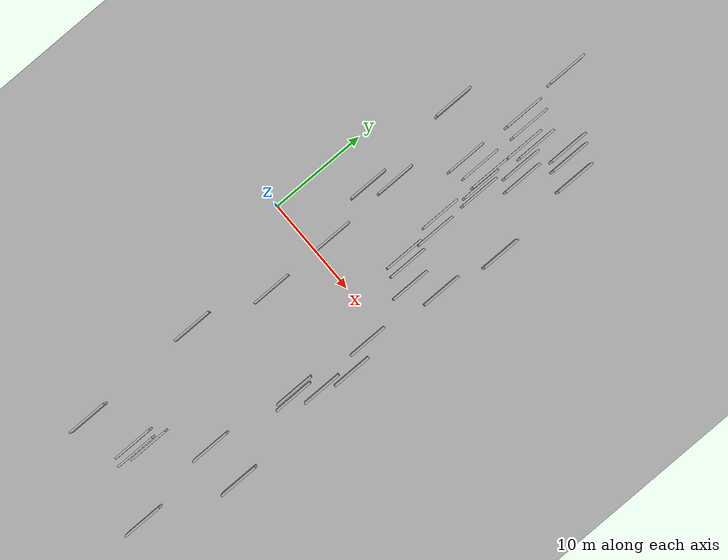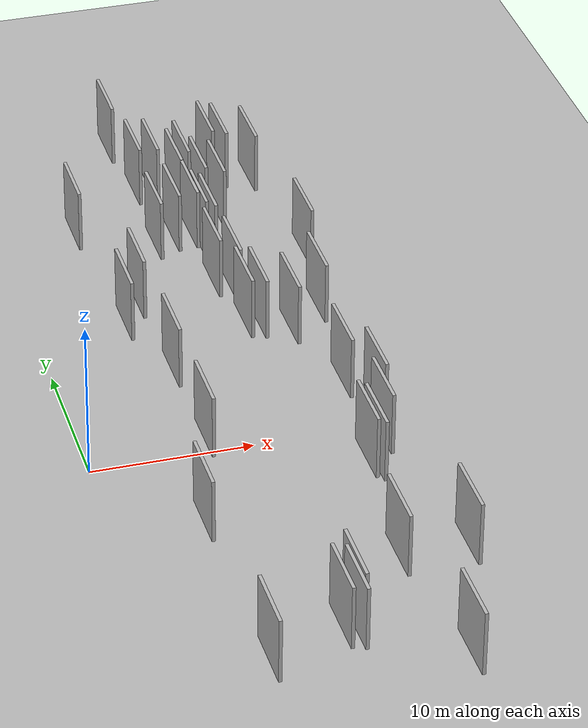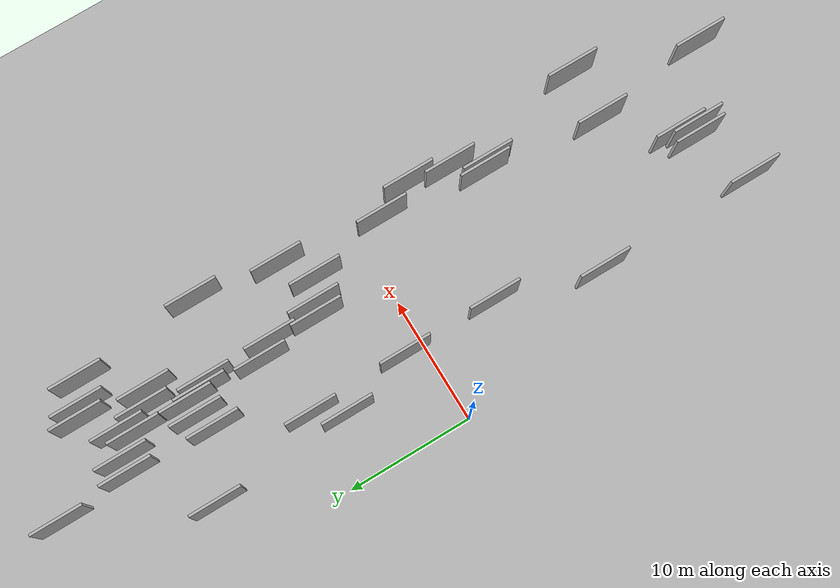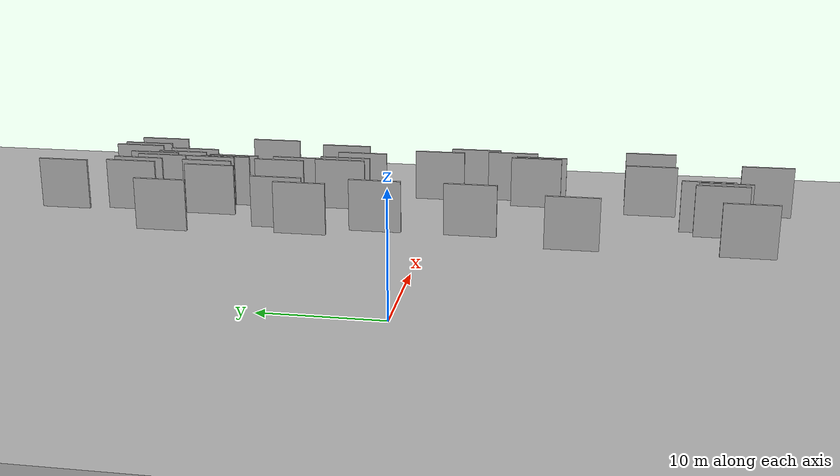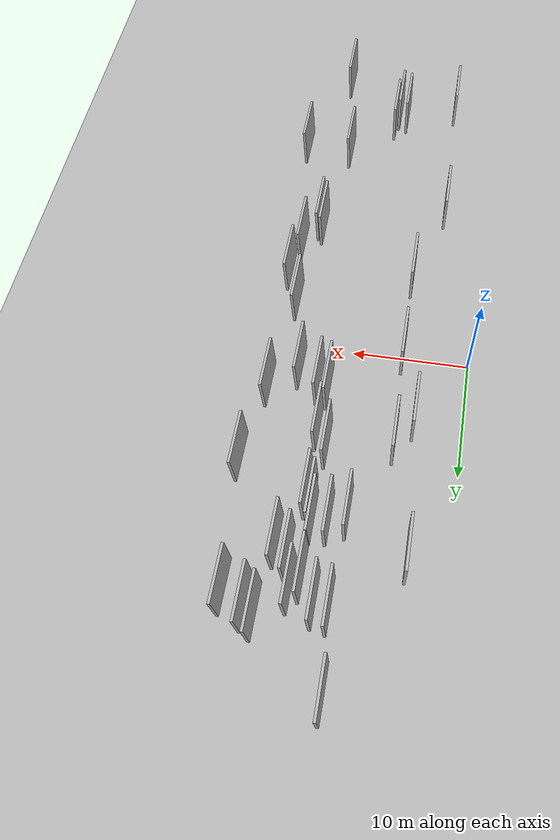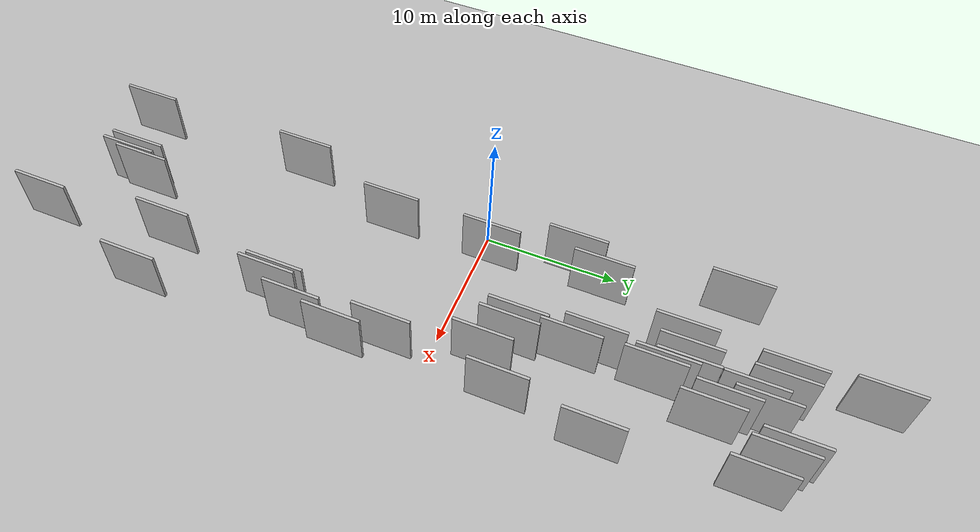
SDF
<?xml version="1.0" encoding="utf-8"?>

<sdf version="1.6">

   <world name="default">

      <gui fullscreen="0">

         <camera name="user_camera">

            <pose>-15 0 4.57585 0 0 0</pose>

            <view_controller>orbit</view_controller>

         </camera>

      </gui>

      <scene>

         <sky>

           <clouds>

             <speed>12</speed>

           </clouds>

         </sky>

         <ambient>0.4 0.4 0.4 1</ambient>

         <background>0.7 0.7 0.7 1</background>

         <shadows>1</shadows>

      </scene>

      <gravity>0 0 -9.8066</gravity>

      <magnetic_field>6e-06 2.3e-05 -4.2e-05</magnetic_field>

      <physics default="0" name="default_physics" type="ode">

         <ode>

            <solver>

               <type>quick</type>

               <iters>10</iters>

               <sor>1.0</sor>

               <use_dynamic_moi_rescaling>0</use_dynamic_moi_rescaling>

            </solver>

            <constraints>

               <cfm>0</cfm>

               <erp>0.2</erp>

               <contact_max_correcting_vel>100</contact_max_correcting_vel>

               <contact_surface_layer>0.001</contact_surface_layer>

            </constraints>

         </ode>

         <max_step_size>0.004</max_step_size>

         <real_time_factor>1</real_time_factor>

         <real_time_update_rate>250</real_time_update_rate>

      </physics>

      <light name="sun" type="directional">

         <cast_shadows>1</cast_shadows>

         <pose>0 0 10 0 0 0</pose>

         <diffuse>0.8 0.8 0.8 1</diffuse>

         <specular>0.2 0.2 0.2 1</specular>

         <attenuation>

            <range>1000</range>

            <constant>0.9</constant>

            <linear>0.01</linear>

            <quadratic>0.001</quadratic>

         </attenuation>

         <direction>-0.5 0.1 -0.9</direction>

      </light>

      <include>

         <name>ground_plane_1</name>

         <uri>model://HANNAS_ground_plane</uri>

         <pose>0 0 0  0 0 0</pose>

      </include>

      <include>

         <name>ground_plane_2</name>

         <uri>model://HANNAS_ground_plane</uri>

         <pose>100 0 0  0 0 0</pose>

      </include>

      <model name="HANNAS_wall_1">

         <static>1</static>

         <pose frame="">16.6338 12.5371 5.0 0.000000 0.000000 1.570796</pose>

         <link name="link">

            <pose frame="">0 0 2.00 0 0 0</pose>

            <collision name="collision">

               <geometry>

                  <box>

                     <size>4.00 0.2 4.00</size>

                  </box>

               </geometry>

               <max_contacts>10</max_contacts>

               <surface>

                  <contact>

                     <ode/>

                  </contact>

                  <bounce/>

                  <friction>

                     <torsional>

                        <ode/>

                     </torsional>

                     <ode/>

                  </friction>

               </surface>

            </collision>

            <visual name="visual">

               <cast_shadows>0</cast_shadows>

               <geometry>

                  <box>

                     <size>4.00 0.2 4.00</size>

                  </box>

               </geometry>

               <material>

                  <script>

                     <uri>model://HANNAS_wall/materials/scripts</uri>

                     <uri>model://HANNAS_wall/materials/textures</uri>

                     <name>vrc/HANNAS_wall</name>

                  </script>

               </material>

            </visual>

            <self_collide>0</self_collide>

            <enable_wind>0</enable_wind>

            <kinematic>0</kinematic>

         </link>

      </model>

      <model name="HANNAS_wall_2">

         <static>1</static>

         <pose frame="">11.7208 19.1572 5.0 0.000000 0.000000 1.570796</pose>

         <link name="link">

            <pose frame="">0 0 2.00 0 0 0</pose>

            <collision name="collision">

               <geometry>

                  <box>

                     <size>4.00 0.2 4.00</size>

                  </box>

               </geometry>

               <max_contacts>10</max_contacts>

               <surface>

                  <contact>

                     <ode/>

                  </contact>

                  <bounce/>

                  <friction>

                     <torsional>

                        <ode/>

                     </torsional>

                     <ode/>

                  </friction>

               </surface>

            </collision>

            <visual name="visual">

               <cast_shadows>0</cast_shadows>

               <geometry>

                  <box>

                     <size>4.00 0.2 4.00</size>

                  </box>

               </geometry>

               <material>

                  <script>

                     <uri>model://HANNAS_wall/materials/scripts</uri>

                     <uri>model://HANNAS_wall/materials/textures</uri>

                     <name>vrc/HANNAS_wall</name>

                  </script>

               </material>

            </visual>

            <self_collide>0</self_collide>

            <enable_wind>0</enable_wind>

            <kinematic>0</kinematic>

         </link>

      </model>

      <model name="HANNAS_wall_3">

         <static>1</static>

         <pose frame="">8.2926 22.3262 5.0 0.000000 0.000000 1.570796</pose>

         <link name="link">

            <pose frame="">0 0 2.00 0 0 0</pose>

            <collision name="collision">

               <geometry>

                  <box>

                     <size>4.00 0.2 4.00</size>

                  </box>

               </geometry>

               <max_contacts>10</max_contacts>

               <surface>

                  <contact>

                     <ode/>

                  </contact>

                  <bounce/>

                  <friction>

                     <torsional>

                        <ode/>

                     </torsional>

                     <ode/>

                  </friction>

               </surface>

            </collision>

            <visual name="visual">

               <cast_shadows>0</cast_shadows>

               <geometry>

                  <box>

                     <size>4.00 0.2 4.00</size>

                  </box>

               </geometry>

               <material>

                  <script>

                     <uri>model://HANNAS_wall/materials/scripts</uri>

                     <uri>model://HANNAS_wall/materials/textures</uri>

                     <name>vrc/HANNAS_wall</name>

                  </script>

               </material>

            </visual>

            <self_collide>0</self_collide>

            <enable_wind>0</enable_wind>

            <kinematic>0</kinematic>

         </link>

      </model>

      <model name="HANNAS_wall_4">

         <static>1</static>

         <pose frame="">14.0427 22.8927 5.0 0.000000 0.000000 1.570796</pose>

         <link name="link">

            <pose frame="">0 0 2.00 0 0 0</pose>

            <collision name="collision">

               <geometry>

                  <box>

                     <size>4.00 0.2 4.00</size>

                  </box>

               </geometry>

               <max_contacts>10</max_contacts>

               <surface>

                  <contact>

                     <ode/>

                  </contact>

                  <bounce/>

                  <friction>

                     <torsional>

                        <ode/>

                     </torsional>

                     <ode/>

                  </friction>

               </surface>

            </collision>

            <visual name="visual">

               <cast_shadows>0</cast_shadows>

               <geometry>

                  <box>

                     <size>4.00 0.2 4.00</size>

                  </box>

               </geometry>

               <material>

                  <script>

                     <uri>model://HANNAS_wall/materials/scripts</uri>

                     <uri>model://HANNAS_wall/materials/textures</uri>

                     <name>vrc/HANNAS_wall</name>

                  </script>

               </material>

            </visual>

            <self_collide>0</self_collide>

            <enable_wind>0</enable_wind>

            <kinematic>0</kinematic>

         </link>

      </model>

      <model name="HANNAS_wall_5">

         <static>1</static>

         <pose frame="">8.8997 -24.0471 5.0 0.000000 0.000000 1.570796</pose>

         <link name="link">

            <pose frame="">0 0 2.00 0 0 0</pose>

            <collision name="collision">

               <geometry>

                  <box>

                     <size>4.00 0.2 4.00</size>

                  </box>

               </geometry>

               <max_contacts>10</max_contacts>

               <surface>

                  <contact>

                     <ode/>

                  </contact>

                  <bounce/>

                  <friction>

                     <torsional>

                        <ode/>

                     </torsional>

                     <ode/>

                  </friction>

               </surface>

            </collision>

            <visual name="visual">

               <cast_shadows>0</cast_shadows>

               <geometry>

                  <box>

                     <size>4.00 0.2 4.00</size>

                  </box>

               </geometry>

               <material>

                  <script>

                     <uri>model://HANNAS_wall/materials/scripts</uri>

                     <uri>model://HANNAS_wall/materials/textures</uri>

                     <name>vrc/HANNAS_wall</name>

                  </script>

               </material>

            </visual>

            <self_collide>0</self_collide>

            <enable_wind>0</enable_wind>

            <kinematic>0</kinematic>

         </link>

      </model>

      <model name="HANNAS_wall_6">

         <static>1</static>

         <pose frame="">15.7053 6.3134 5.0 0.000000 0.000000 1.570796</pose>

         <link name="link">

            <pose frame="">0 0 2.00 0 0 0</pose>

            <collision name="collision">

               <geometry>

                  <box>

                     <size>4.00 0.2 4.00</size>

                  </box>

               </geometry>

               <max_contacts>10</max_contacts>

               <surface>

                  <contact>

                     <ode/>

                  </contact>

                  <bounce/>

                  <friction>

                     <torsional>

                        <ode/>

                     </torsional>

                     <ode/>

                  </friction>

               </surface>

            </collision>

            <visual name="visual">

               <cast_shadows>0</cast_shadows>

               <geometry>

                  <box>

                     <size>4.00 0.2 4.00</size>

                  </box>

               </geometry>

               <material>

                  <script>

                     <uri>model://HANNAS_wall/materials/scripts</uri>

                     <uri>model://HANNAS_wall/materials/textures</uri>

                     <name>vrc/HANNAS_wall</name>

                  </script>

               </material>

            </visual>

            <self_collide>0</self_collide>

            <enable_wind>0</enable_wind>

            <kinematic>0</kinematic>

         </link>

      </model>

      <model name="HANNAS_wall_7">

         <static>1</static>

         <pose frame="">13.5047 4.5026 5.0 0.000000 0.000000 1.570796</pose>

         <link name="link">

            <pose frame="">0 0 2.00 0 0 0</pose>

            <collision name="collision">

               <geometry>

                  <box>

                     <size>4.00 0.2 4.00</size>

                  </box>

               </geometry>

               <max_contacts>10</max_contacts>

               <surface>

                  <contact>

                     <ode/>

                  </contact>

                  <bounce/>

                  <friction>

                     <torsional>

                        <ode/>

                     </torsional>

                     <ode/>

                  </friction>

               </surface>

            </collision>

            <visual name="visual">

               <cast_shadows>0</cast_shadows>

               <geometry>

                  <box>

                     <size>4.00 0.2 4.00</size>

                  </box>

               </geometry>

               <material>

                  <script>

                     <uri>model://HANNAS_wall/materials/scripts</uri>

                     <uri>model://HANNAS_wall/materials/textures</uri>

                     <name>vrc/HANNAS_wall</name>

                  </script>

               </material>

            </visual>

            <self_collide>0</self_collide>

            <enable_wind>0</enable_wind>

            <kinematic>0</kinematic>

         </link>

      </model>

      <model name="HANNAS_wall_8">

         <static>1</static>

         <pose frame="">16.9233 -18.7114 5.0 0.000000 0.000000 1.570796</pose>

         <link name="link">

            <pose frame="">0 0 2.00 0 0 0</pose>

            <collision name="collision">

               <geometry>

                  <box>

                     <size>4.00 0.2 4.00</size>

                  </box>

               </geometry>

               <max_contacts>10</max_contacts>

               <surface>

                  <contact>

                     <ode/>

                  </contact>

                  <bounce/>

                  <friction>

                     <torsional>

                        <ode/>

                     </torsional>

                     <ode/>

                  </friction>

               </surface>

            </collision>

            <visual name="visual">

               <cast_shadows>0</cast_shadows>

               <geometry>

                  <box>

                     <size>4.00 0.2 4.00</size>

                  </box>

               </geometry>

               <material>

                  <script>

                     <uri>model://HANNAS_wall/materials/scripts</uri>

                     <uri>model://HANNAS_wall/materials/textures</uri>

                     <name>vrc/HANNAS_wall</name>

                  </script>

               </material>

            </visual>

            <self_collide>0</self_collide>

            <enable_wind>0</enable_wind>

            <kinematic>0</kinematic>

         </link>

      </model>

      <model name="HANNAS_wall_9">

         <static>1</static>

         <pose frame="">12.9235 -18.6646 5.0 0.000000 0.000000 1.570796</pose>

         <link name="link">

            <pose frame="">0 0 2.00 0 0 0</pose>

            <collision name="collision">

               <geometry>

                  <box>

                     <size>4.00 0.2 4.00</size>

                  </box>

               </geometry>

               <max_contacts>10</max_contacts>

               <surface>

                  <contact>

                     <ode/>

                  </contact>

                  <bounce/>

                  <friction>

                     <torsional>

                        <ode/>

                     </torsional>

                     <ode/>

                  </friction>

               </surface>

            </collision>

            <visual name="visual">

               <cast_shadows>0</cast_shadows>

               <geometry>

                  <box>

                     <size>4.00 0.2 4.00</size>

                  </box>

               </geometry>

               <material>

                  <script>

                     <uri>model://HANNAS_wall/materials/scripts</uri>

                     <uri>model://HANNAS_wall/materials/textures</uri>

                     <name>vrc/HANNAS_wall</name>

                  </script>

               </material>

            </visual>

            <self_collide>0</self_collide>

            <enable_wind>0</enable_wind>

            <kinematic>0</kinematic>

         </link>

      </model>

      <model name="HANNAS_wall_10">

         <static>1</static>

         <pose frame="">4.1106 7.5083 5.0 0.000000 0.000000 1.570796</pose>

         <link name="link">

            <pose frame="">0 0 2.00 0 0 0</pose>

            <collision name="collision">

               <geometry>

                  <box>

                     <size>4.00 0.2 4.00</size>

                  </box>

               </geometry>

               <max_contacts>10</max_contacts>

               <surface>

                  <contact>

                     <ode/>

                  </contact>

                  <bounce/>

                  <friction>

                     <torsional>

                        <ode/>

                     </torsional>

                     <ode/>

                  </friction>

               </surface>

            </collision>

            <visual name="visual">

               <cast_shadows>0</cast_shadows>

               <geometry>

                  <box>

                     <size>4.00 0.2 4.00</size>

                  </box>

               </geometry>

               <material>

                  <script>

                     <uri>model://HANNAS_wall/materials/scripts</uri>

                     <uri>model://HANNAS_wall/materials/textures</uri>

                     <name>vrc/HANNAS_wall</name>

                  </script>

               </material>

            </visual>

            <self_collide>0</self_collide>

            <enable_wind>0</enable_wind>

            <kinematic>0</kinematic>

         </link>

      </model>

      <model name="HANNAS_wall_11">

         <static>1</static>

         <pose frame="">10.7207 15.2473 5.0 0.000000 0.000000 1.570796</pose>

         <link name="link">

            <pose frame="">0 0 2.00 0 0 0</pose>

            <collision name="collision">

               <geometry>

                  <box>

                     <size>4.00 0.2 4.00</size>

                  </box>

               </geometry>

               <max_contacts>10</max_contacts>

               <surface>

                  <contact>

                     <ode/>

                  </contact>

                  <bounce/>

                  <friction>

                     <torsional>

                        <ode/>

                     </torsional>

                     <ode/>

                  </friction>

               </surface>

            </collision>

            <visual name="visual">

               <cast_shadows>0</cast_shadows>

               <geometry>

                  <box>

                     <size>4.00 0.2 4.00</size>

                  </box>

               </geometry>

               <material>

                  <script>

                     <uri>model://HANNAS_wall/materials/scripts</uri>

                     <uri>model://HANNAS_wall/materials/textures</uri>

                     <name>vrc/HANNAS_wall</name>

                  </script>

               </material>

            </visual>

            <self_collide>0</self_collide>

            <enable_wind>0</enable_wind>

            <kinematic>0</kinematic>

         </link>

      </model>

      <model name="HANNAS_wall_12">

         <static>1</static>

         <pose frame="">3.7684 -25.3880 5.0 0.000000 0.000000 1.570796</pose>

         <link name="link">

            <pose frame="">0 0 2.00 0 0 0</pose>

            <collision name="collision">

               <geometry>

                  <box>

                     <size>4.00 0.2 4.00</size>

                  </box>

               </geometry>

               <max_contacts>10</max_contacts>

               <surface>

                  <contact>

                     <ode/>

                  </contact>

                  <bounce/>

                  <friction>

                     <torsional>

                        <ode/>

                     </torsional>

                     <ode/>

                  </friction>

               </surface>

            </collision>

            <visual name="visual">

               <cast_shadows>0</cast_shadows>

               <geometry>

                  <box>

                     <size>4.00 0.2 4.00</size>

                  </box>

               </geometry>

               <material>

                  <script>

                     <uri>model://HANNAS_wall/materials/scripts</uri>

                     <uri>model://HANNAS_wall/materials/textures</uri>

                     <name>vrc/HANNAS_wall</name>

                  </script>

               </material>

            </visual>

            <self_collide>0</self_collide>

            <enable_wind>0</enable_wind>

            <kinematic>0</kinematic>

         </link>

      </model>

      <model name="HANNAS_wall_13">

         <static>1</static>

         <pose frame="">11.1551 14.6577 5.0 0.000000 0.000000 1.570796</pose>

         <link name="link">

            <pose frame="">0 0 2.00 0 0 0</pose>

            <collision name="collision">

               <geometry>

                  <box>

                     <size>4.00 0.2 4.00</size>

                  </box>

               </geometry>

               <max_contacts>10</max_contacts>

               <surface>

                  <contact>

                     <ode/>

                  </contact>

                  <bounce/>

                  <friction>

                     <torsional>

                        <ode/>

                     </torsional>

                     <ode/>

                  </friction>

               </surface>

            </collision>

            <visual name="visual">

               <cast_shadows>0</cast_shadows>

               <geometry>

                  <box>

                     <size>4.00 0.2 4.00</size>

                  </box>

               </geometry>

               <material>

                  <script>

                     <uri>model://HANNAS_wall/materials/scripts</uri>

                     <uri>model://HANNAS_wall/materials/textures</uri>

                     <name>vrc/HANNAS_wall</name>

                  </script>

               </material>

            </visual>

            <self_collide>0</self_collide>

            <enable_wind>0</enable_wind>

            <kinematic>0</kinematic>

         </link>

      </model>

      <model name="HANNAS_wall_14">

         <static>1</static>

         <pose frame="">5.5936 2.0140 5.0 0.000000 0.000000 1.570796</pose>

         <link name="link">

            <pose frame="">0 0 2.00 0 0 0</pose>

            <collision name="collision">

               <geometry>

                  <box>

                     <size>4.00 0.2 4.00</size>

                  </box>

               </geometry>

               <max_contacts>10</max_contacts>

               <surface>

                  <contact>

                     <ode/>

                  </contact>

                  <bounce/>

                  <friction>

                     <torsional>

                        <ode/>

                     </torsional>

                     <ode/>

                  </friction>

               </surface>

            </collision>

            <visual name="visual">

               <cast_shadows>0</cast_shadows>

               <geometry>

                  <box>

                     <size>4.00 0.2 4.00</size>

                  </box>

               </geometry>

               <material>

                  <script>

                     <uri>model://HANNAS_wall/materials/scripts</uri>

                     <uri>model://HANNAS_wall/materials/textures</uri>

                     <name>vrc/HANNAS_wall</name>

                  </script>

               </material>

            </visual>

            <self_collide>0</self_collide>

            <enable_wind>0</enable_wind>

            <kinematic>0</kinematic>

         </link>

      </model>

      <model name="HANNAS_wall_15">

         <static>1</static>

         <pose frame="">11.0317 5.8766 5.0 0.000000 0.000000 1.570796</pose>

         <link name="link">

            <pose frame="">0 0 2.00 0 0 0</pose>

            <collision name="collision">

               <geometry>

                  <box>

                     <size>4.00 0.2 4.00</size>

                  </box>

               </geometry>

               <max_contacts>10</max_contacts>

               <surface>

                  <contact>

                     <ode/>

                  </contact>

                  <bounce/>

                  <friction>

                     <torsional>

                        <ode/>

                     </torsional>

                     <ode/>

                  </friction>

               </surface>

            </collision>

            <visual name="visual">

               <cast_shadows>0</cast_shadows>

               <geometry>

                  <box>

                     <size>4.00 0.2 4.00</size>

                  </box>

               </geometry>

               <material>

                  <script>

                     <uri>model://HANNAS_wall/materials/scripts</uri>

                     <uri>model://HANNAS_wall/materials/textures</uri>

                     <name>vrc/HANNAS_wall</name>

                  </script>

               </material>

            </visual>

            <self_collide>0</self_collide>

            <enable_wind>0</enable_wind>

            <kinematic>0</kinematic>

         </link>

      </model>

      <model name="HANNAS_wall_16">

         <static>1</static>

         <pose frame="">3.5711 -12.8731 5.0 0.000000 0.000000 1.570796</pose>

         <link name="link">

            <pose frame="">0 0 2.00 0 0 0</pose>

            <collision name="collision">

               <geometry>

                  <box>

                     <size>4.00 0.2 4.00</size>

                  </box>

               </geometry>

               <max_contacts>10</max_contacts>

               <surface>

                  <contact>

                     <ode/>

                  </contact>

                  <bounce/>

                  <friction>

                     <torsional>

                        <ode/>

                     </torsional>

                     <ode/>

                  </friction>

               </surface>

            </collision>

            <visual name="visual">

               <cast_shadows>0</cast_shadows>

               <geometry>

                  <box>

                     <size>4.00 0.2 4.00</size>

                  </box>

               </geometry>

               <material>

                  <script>

                     <uri>model://HANNAS_wall/materials/scripts</uri>

                     <uri>model://HANNAS_wall/materials/textures</uri>

                     <name>vrc/HANNAS_wall</name>

                  </script>

               </material>

            </visual>

            <self_collide>0</self_collide>

            <enable_wind>0</enable_wind>

            <kinematic>0</kinematic>

         </link>

      </model>

      <model name="HANNAS_wall_17">

         <static>1</static>

         <pose frame="">13.2911 23.3875 5.0 0.000000 0.000000 1.570796</pose>

         <link name="link">

            <pose frame="">0 0 2.00 0 0 0</pose>

            <collision name="collision">

               <geometry>

                  <box>

                     <size>4.00 0.2 4.00</size>

                  </box>

               </geometry>

               <max_contacts>10</max_contacts>

               <surface>

                  <contact>

                     <ode/>

                  </contact>

                  <bounce/>

                  <friction>

                     <torsional>

                        <ode/>

                     </torsional>

                     <ode/>

                  </friction>

               </surface>

            </collision>

            <visual name="visual">

               <cast_shadows>0</cast_shadows>

               <geometry>

                  <box>

                     <size>4.00 0.2 4.00</size>

                  </box>

               </geometry>

               <material>

                  <script>

                     <uri>model://HANNAS_wall/materials/scripts</uri>

                     <uri>model://HANNAS_wall/materials/textures</uri>

                     <name>vrc/HANNAS_wall</name>

                  </script>

               </material>

            </visual>

            <self_collide>0</self_collide>

            <enable_wind>0</enable_wind>

            <kinematic>0</kinematic>

         </link>

      </model>

      <model name="HANNAS_wall_18">

         <static>1</static>

         <pose frame="">3.4284 18.1562 5.0 0.000000 0.000000 1.570796</pose>

         <link name="link">

            <pose frame="">0 0 2.00 0 0 0</pose>

            <collision name="collision">

               <geometry>

                  <box>

                     <size>4.00 0.2 4.00</size>

                  </box>

               </geometry>

               <max_contacts>10</max_contacts>

               <surface>

                  <contact>

                     <ode/>

                  </contact>

                  <bounce/>

                  <friction>

                     <torsional>

                        <ode/>

                     </torsional>

                     <ode/>

                  </friction>

               </surface>

            </collision>

            <visual name="visual">

               <cast_shadows>0</cast_shadows>

               <geometry>

                  <box>

                     <size>4.00 0.2 4.00</size>

                  </box>

               </geometry>

               <material>

                  <script>

                     <uri>model://HANNAS_wall/materials/scripts</uri>

                     <uri>model://HANNAS_wall/materials/textures</uri>

                     <name>vrc/HANNAS_wall</name>

                  </script>

               </material>

            </visual>

            <self_collide>0</self_collide>

            <enable_wind>0</enable_wind>

            <kinematic>0</kinematic>

         </link>

      </model>

      <model name="HANNAS_wall_19">

         <static>1</static>

         <pose frame="">14.8635 -1.7004 5.0 0.000000 0.000000 1.570796</pose>

         <link name="link">

            <pose frame="">0 0 2.00 0 0 0</pose>

            <collision name="collision">

               <geometry>

                  <box>

                     <size>4.00 0.2 4.00</size>

                  </box>

               </geometry>

               <max_contacts>10</max_contacts>

               <surface>

                  <contact>

                     <ode/>

                  </contact>

                  <bounce/>

                  <friction>

                     <torsional>

                        <ode/>

                     </torsional>

                     <ode/>

                  </friction>

               </surface>

            </collision>

            <visual name="visual">

               <cast_shadows>0</cast_shadows>

               <geometry>

                  <box>

                     <size>4.00 0.2 4.00</size>

                  </box>

               </geometry>

               <material>

                  <script>

                     <uri>model://HANNAS_wall/materials/scripts</uri>

                     <uri>model://HANNAS_wall/materials/textures</uri>

                     <name>vrc/HANNAS_wall</name>

                  </script>

               </material>

            </visual>

            <self_collide>0</self_collide>

            <enable_wind>0</enable_wind>

            <kinematic>0</kinematic>

         </link>

      </model>

      <model name="HANNAS_wall_20">

         <static>1</static>

         <pose frame="">8.1845 -23.7643 5.0 0.000000 0.000000 1.570796</pose>

         <link name="link">

            <pose frame="">0 0 2.00 0 0 0</pose>

            <collision name="collision">

               <geometry>

                  <box>

                     <size>4.00 0.2 4.00</size>

                  </box>

               </geometry>

               <max_contacts>10</max_contacts>

               <surface>

                  <contact>

                     <ode/>

                  </contact>

                  <bounce/>

                  <friction>

                     <torsional>

                        <ode/>

                     </torsional>

                     <ode/>

                  </friction>

               </surface>

            </collision>

            <visual name="visual">

               <cast_shadows>0</cast_shadows>

               <geometry>

                  <box>

                     <size>4.00 0.2 4.00</size>

                  </box>

               </geometry>

               <material>

                  <script>

                     <uri>model://HANNAS_wall/materials/scripts</uri>

                     <uri>model://HANNAS_wall/materials/textures</uri>

                     <name>vrc/HANNAS_wall</name>

                  </script>

               </material>

            </visual>

            <self_collide>0</self_collide>

            <enable_wind>0</enable_wind>

            <kinematic>0</kinematic>

         </link>

      </model>

      <model name="HANNAS_wall_21">

         <static>1</static>

         <pose frame="">5.3794 9.6300 5.0 0.000000 0.000000 1.570796</pose>

         <link name="link">

            <pose frame="">0 0 2.00 0 0 0</pose>

            <collision name="collision">

               <geometry>

                  <box>

                     <size>4.00 0.2 4.00</size>

                  </box>

               </geometry>

               <max_contacts>10</max_contacts>

               <surface>

                  <contact>

                     <ode/>

                  </contact>

                  <bounce/>

                  <friction>

                     <torsional>

                        <ode/>

                     </torsional>

                     <ode/>

                  </friction>

               </surface>

            </collision>

            <visual name="visual">

               <cast_shadows>0</cast_shadows>

               <geometry>

                  <box>

                     <size>4.00 0.2 4.00</size>

                  </box>

               </geometry>

               <material>

                  <script>

                     <uri>model://HANNAS_wall/materials/scripts</uri>

                     <uri>model://HANNAS_wall/materials/textures</uri>

                     <name>vrc/HANNAS_wall</name>

                  </script>

               </material>

            </visual>

            <self_collide>0</self_collide>

            <enable_wind>0</enable_wind>

            <kinematic>0</kinematic>

         </link>

      </model>

      <model name="HANNAS_wall_22">

         <static>1</static>

         <pose frame="">11.2618 9.3961 5.0 0.000000 0.000000 1.570796</pose>

         <link name="link">

            <pose frame="">0 0 2.00 0 0 0</pose>

            <collision name="collision">

               <geometry>

                  <box>

                     <size>4.00 0.2 4.00</size>

                  </box>

               </geometry>

               <max_contacts>10</max_contacts>

               <surface>

                  <contact>

                     <ode/>

                  </contact>

                  <bounce/>

                  <friction>

                     <torsional>

                        <ode/>

                     </torsional>

                     <ode/>

                  </friction>

               </surface>

            </collision>

            <visual name="visual">

               <cast_shadows>0</cast_shadows>

               <geometry>

                  <box>

                     <size>4.00 0.2 4.00</size>

                  </box>

               </geometry>

               <material>

                  <script>

                     <uri>model://HANNAS_wall/materials/scripts</uri>

                     <uri>model://HANNAS_wall/materials/textures</uri>

                     <name>vrc/HANNAS_wall</name>

                  </script>

               </material>

            </visual>

            <self_collide>0</self_collide>

            <enable_wind>0</enable_wind>

            <kinematic>0</kinematic>

         </link>

      </model>

      <model name="HANNAS_wall_23">

         <static>1</static>

         <pose frame="">9.3036 16.3489 5.0 0.000000 0.000000 1.570796</pose>

         <link name="link">

            <pose frame="">0 0 2.00 0 0 0</pose>

            <collision name="collision">

               <geometry>

                  <box>

                     <size>4.00 0.2 4.00</size>

                  </box>

               </geometry>

               <max_contacts>10</max_contacts>

               <surface>

                  <contact>

                     <ode/>

                  </contact>

                  <bounce/>

                  <friction>

                     <torsional>

                        <ode/>

                     </torsional>

                     <ode/>

                  </friction>

               </surface>

            </collision>

            <visual name="visual">

               <cast_shadows>0</cast_shadows>

               <geometry>

                  <box>

                     <size>4.00 0.2 4.00</size>

                  </box>

               </geometry>

               <material>

                  <script>

                     <uri>model://HANNAS_wall/materials/scripts</uri>

                     <uri>model://HANNAS_wall/materials/textures</uri>

                     <name>vrc/HANNAS_wall</name>

                  </script>

               </material>

            </visual>

            <self_collide>0</self_collide>

            <enable_wind>0</enable_wind>

            <kinematic>0</kinematic>

         </link>

      </model>

      <model name="HANNAS_wall_24">

         <static>1</static>

         <pose frame="">9.3812 22.0900 5.0 0.000000 0.000000 1.570796</pose>

         <link name="link">

            <pose frame="">0 0 2.00 0 0 0</pose>

            <collision name="collision">

               <geometry>

                  <box>

                     <size>4.00 0.2 4.00</size>

                  </box>

               </geometry>

               <max_contacts>10</max_contacts>

               <surface>

                  <contact>

                     <ode/>

                  </contact>

                  <bounce/>

                  <friction>

                     <torsional>

                        <ode/>

                     </torsional>

                     <ode/>

                  </friction>

               </surface>

            </collision>

            <visual name="visual">

               <cast_shadows>0</cast_shadows>

               <geometry>

                  <box>

                     <size>4.00 0.2 4.00</size>

                  </box>

               </geometry>

               <material>

                  <script>

                     <uri>model://HANNAS_wall/materials/scripts</uri>

                     <uri>model://HANNAS_wall/materials/textures</uri>

                     <name>vrc/HANNAS_wall</name>

                  </script>

               </material>

            </visual>

            <self_collide>0</self_collide>

            <enable_wind>0</enable_wind>

            <kinematic>0</kinematic>

         </link>

      </model>

      <model name="HANNAS_wall_25">

         <static>1</static>

         <pose frame="">14.3207 -10.0185 5.0 0.000000 0.000000 1.570796</pose>

         <link name="link">

            <pose frame="">0 0 2.00 0 0 0</pose>

            <collision name="collision">

               <geometry>

                  <box>

                     <size>4.00 0.2 4.00</size>

                  </box>

               </geometry>

               <max_contacts>10</max_contacts>

               <surface>

                  <contact>

                     <ode/>

                  </contact>

                  <bounce/>

                  <friction>

                     <torsional>

                        <ode/>

                     </torsional>

                     <ode/>

                  </friction>

               </surface>

            </collision>

            <visual name="visual">

               <cast_shadows>0</cast_shadows>

               <geometry>

                  <box>

                     <size>4.00 0.2 4.00</size>

                  </box>

               </geometry>

               <material>

                  <script>

                     <uri>model://HANNAS_wall/materials/scripts</uri>

                     <uri>model://HANNAS_wall/materials/textures</uri>

                     <name>vrc/HANNAS_wall</name>

                  </script>

               </material>

            </visual>

            <self_collide>0</self_collide>

            <enable_wind>0</enable_wind>

            <kinematic>0</kinematic>

         </link>

      </model>

      <model name="HANNAS_wall_26">

         <static>1</static>

         <pose frame="">10.5050 20.5005 5.0 0.000000 0.000000 1.570796</pose>

         <link name="link">

            <pose frame="">0 0 2.00 0 0 0</pose>

            <collision name="collision">

               <geometry>

                  <box>

                     <size>4.00 0.2 4.00</size>

                  </box>

               </geometry>

               <max_contacts>10</max_contacts>

               <surface>

                  <contact>

                     <ode/>

                  </contact>

                  <bounce/>

                  <friction>

                     <torsional>

                        <ode/>

                     </torsional>

                     <ode/>

                  </friction>

               </surface>

            </collision>

            <visual name="visual">

               <cast_shadows>0</cast_shadows>

               <geometry>

                  <box>

                     <size>4.00 0.2 4.00</size>

                  </box>

               </geometry>

               <material>

                  <script>

                     <uri>model://HANNAS_wall/materials/scripts</uri>

                     <uri>model://HANNAS_wall/materials/textures</uri>

                     <name>vrc/HANNAS_wall</name>

                  </script>

               </material>

            </visual>

            <self_collide>0</self_collide>

            <enable_wind>0</enable_wind>

            <kinematic>0</kinematic>

         </link>

      </model>

      <model name="HANNAS_wall_27">

         <static>1</static>

         <pose frame="">10.4790 16.4423 5.0 0.000000 0.000000 1.570796</pose>

         <link name="link">

            <pose frame="">0 0 2.00 0 0 0</pose>

            <collision name="collision">

               <geometry>

                  <box>

                     <size>4.00 0.2 4.00</size>

                  </box>

               </geometry>

               <max_contacts>10</max_contacts>

               <surface>

                  <contact>

                     <ode/>

                  </contact>

                  <bounce/>

                  <friction>

                     <torsional>

                        <ode/>

                     </torsional>

                     <ode/>

                  </friction>

               </surface>

            </collision>

            <visual name="visual">

               <cast_shadows>0</cast_shadows>

               <geometry>

                  <box>

                     <size>4.00 0.2 4.00</size>

                  </box>

               </geometry>

               <material>

                  <script>

                     <uri>model://HANNAS_wall/materials/scripts</uri>

                     <uri>model://HANNAS_wall/materials/textures</uri>

                     <name>vrc/HANNAS_wall</name>

                  </script>

               </material>

            </visual>

            <self_collide>0</self_collide>

            <enable_wind>0</enable_wind>

            <kinematic>0</kinematic>

         </link>

      </model>

      <model name="HANNAS_wall_28">

         <static>1</static>

         <pose frame="">11.2073 21.3644 5.0 0.000000 0.000000 1.570796</pose>

         <link name="link">

            <pose frame="">0 0 2.00 0 0 0</pose>

            <collision name="collision">

               <geometry>

                  <box>

                     <size>4.00 0.2 4.00</size>

                  </box>

               </geometry>

               <max_contacts>10</max_contacts>

               <surface>

                  <contact>

                     <ode/>

                  </contact>

                  <bounce/>

                  <friction>

                     <torsional>

                        <ode/>

                     </torsional>

                     <ode/>

                  </friction>

               </surface>

            </collision>

            <visual name="visual">

               <cast_shadows>0</cast_shadows>

               <geometry>

                  <box>

                     <size>4.00 0.2 4.00</size>

                  </box>

               </geometry>

               <material>

                  <script>

                     <uri>model://HANNAS_wall/materials/scripts</uri>

                     <uri>model://HANNAS_wall/materials/textures</uri>

                     <name>vrc/HANNAS_wall</name>

                  </script>

               </material>

            </visual>

            <self_collide>0</self_collide>

            <enable_wind>0</enable_wind>

            <kinematic>0</kinematic>

         </link>

      </model>

      <model name="HANNAS_wall_29">

         <static>1</static>

         <pose frame="">9.2045 -22.7828 5.0 0.000000 0.000000 1.570796</pose>

         <link name="link">

            <pose frame="">0 0 2.00 0 0 0</pose>

            <collision name="collision">

               <geometry>

                  <box>

                     <size>4.00 0.2 4.00</size>

                  </box>

               </geometry>

               <max_contacts>10</max_contacts>

               <surface>

                  <contact>

                     <ode/>

                  </contact>

                  <bounce/>

                  <friction>

                     <torsional>

                        <ode/>

                     </torsional>

                     <ode/>

                  </friction>

               </surface>

            </collision>

            <visual name="visual">

               <cast_shadows>0</cast_shadows>

               <geometry>

                  <box>

                     <size>4.00 0.2 4.00</size>

                  </box>

               </geometry>

               <material>

                  <script>

                     <uri>model://HANNAS_wall/materials/scripts</uri>

                     <uri>model://HANNAS_wall/materials/textures</uri>

                     <name>vrc/HANNAS_wall</name>

                  </script>

               </material>

            </visual>

            <self_collide>0</self_collide>

            <enable_wind>0</enable_wind>

            <kinematic>0</kinematic>

         </link>

      </model>

      <model name="HANNAS_wall_30">

         <static>1</static>

         <pose frame="">16.0129 -4.5599 5.0 0.000000 0.000000 1.570796</pose>

         <link name="link">

            <pose frame="">0 0 2.00 0 0 0</pose>

            <collision name="collision">

               <geometry>

                  <box>

                     <size>4.00 0.2 4.00</size>

                  </box>

               </geometry>

               <max_contacts>10</max_contacts>

               <surface>

                  <contact>

                     <ode/>

                  </contact>

                  <bounce/>

                  <friction>

                     <torsional>

                        <ode/>

                     </torsional>

                     <ode/>

                  </friction>

               </surface>

            </collision>

            <visual name="visual">

               <cast_shadows>0</cast_shadows>

               <geometry>

                  <box>

                     <size>4.00 0.2 4.00</size>

                  </box>

               </geometry>

               <material>

                  <script>

                     <uri>model://HANNAS_wall/materials/scripts</uri>

                     <uri>model://HANNAS_wall/materials/textures</uri>

                     <name>vrc/HANNAS_wall</name>

                  </script>

               </material>

            </visual>

            <self_collide>0</self_collide>

            <enable_wind>0</enable_wind>

            <kinematic>0</kinematic>

         </link>

      </model>

      <model name="HANNAS_wall_31">

         <static>1</static>

         <pose frame="">10.3738 10.6928 5.0 0.000000 0.000000 1.570796</pose>

         <link name="link">

            <pose frame="">0 0 2.00 0 0 0</pose>

            <collision name="collision">

               <geometry>

                  <box>

                     <size>4.00 0.2 4.00</size>

                  </box>

               </geometry>

               <max_contacts>10</max_contacts>

               <surface>

                  <contact>

                     <ode/>

                  </contact>

                  <bounce/>

                  <friction>

                     <torsional>

                        <ode/>

                     </torsional>

                     <ode/>

                  </friction>

               </surface>

            </collision>

            <visual name="visual">

               <cast_shadows>0</cast_shadows>

               <geometry>

                  <box>

                     <size>4.00 0.2 4.00</size>

                  </box>

               </geometry>

               <material>

                  <script>

                     <uri>model://HANNAS_wall/materials/scripts</uri>

                     <uri>model://HANNAS_wall/materials/textures</uri>

                     <name>vrc/HANNAS_wall</name>

                  </script>

               </material>

            </visual>

            <self_collide>0</self_collide>

            <enable_wind>0</enable_wind>

            <kinematic>0</kinematic>

         </link>

      </model>

      <model name="HANNAS_wall_32">

         <static>1</static>

         <pose frame="">14.0990 -27.6335 5.0 0.000000 0.000000 1.570796</pose>

         <link name="link">

            <pose frame="">0 0 2.00 0 0 0</pose>

            <collision name="collision">

               <geometry>

                  <box>

                     <size>4.00 0.2 4.00</size>

                  </box>

               </geometry>

               <max_contacts>10</max_contacts>

               <surface>

                  <contact>

                     <ode/>

                  </contact>

                  <bounce/>

                  <friction>

                     <torsional>

                        <ode/>

                     </torsional>

                     <ode/>

                  </friction>

               </surface>

            </collision>

            <visual name="visual">

               <cast_shadows>0</cast_shadows>

               <geometry>

                  <box>

                     <size>4.00 0.2 4.00</size>

                  </box>

               </geometry>

               <material>

                  <script>

                     <uri>model://HANNAS_wall/materials/scripts</uri>

                     <uri>model://HANNAS_wall/materials/textures</uri>

                     <name>vrc/HANNAS_wall</name>

                  </script>

               </material>

            </visual>

            <self_collide>0</self_collide>

            <enable_wind>0</enable_wind>

            <kinematic>0</kinematic>

         </link>

      </model>

      <model name="HANNAS_wall_33">

         <static>1</static>

         <pose frame="">8.0047 15.7392 5.0 0.000000 0.000000 1.570796</pose>

         <link name="link">

            <pose frame="">0 0 2.00 0 0 0</pose>

            <collision name="collision">

               <geometry>

                  <box>

                     <size>4.00 0.2 4.00</size>

                  </box>

               </geometry>

               <max_contacts>10</max_contacts>

               <surface>

                  <contact>

                     <ode/>

                  </contact>

                  <bounce/>

                  <friction>

                     <torsional>

                        <ode/>

                     </torsional>

                     <ode/>

                  </friction>

               </surface>

            </collision>

            <visual name="visual">

               <cast_shadows>0</cast_shadows>

               <geometry>

                  <box>

                     <size>4.00 0.2 4.00</size>

                  </box>

               </geometry>

               <material>

                  <script>

                     <uri>model://HANNAS_wall/materials/scripts</uri>

                     <uri>model://HANNAS_wall/materials/textures</uri>

                     <name>vrc/HANNAS_wall</name>

                  </script>

               </material>

            </visual>

            <self_collide>0</self_collide>

            <enable_wind>0</enable_wind>

            <kinematic>0</kinematic>

         </link>

      </model>

      <model name="HANNAS_wall_34">

         <static>1</static>

         <pose frame="">5.6438 -5.2371 5.0 0.000000 0.000000 1.570796</pose>

         <link name="link">

            <pose frame="">0 0 2.00 0 0 0</pose>

            <collision name="collision">

               <geometry>

                  <box>

                     <size>4.00 0.2 4.00</size>

                  </box>

               </geometry>

               <max_contacts>10</max_contacts>

               <surface>

                  <contact>

                     <ode/>

                  </contact>

                  <bounce/>

                  <friction>

                     <torsional>

                        <ode/>

                     </torsional>

                     <ode/>

                  </friction>

               </surface>

            </collision>

            <visual name="visual">

               <cast_shadows>0</cast_shadows>

               <geometry>

                  <box>

                     <size>4.00 0.2 4.00</size>

                  </box>

               </geometry>

               <material>

                  <script>

                     <uri>model://HANNAS_wall/materials/scripts</uri>

                     <uri>model://HANNAS_wall/materials/textures</uri>

                     <name>vrc/HANNAS_wall</name>

                  </script>

               </material>

            </visual>

            <self_collide>0</self_collide>

            <enable_wind>0</enable_wind>

            <kinematic>0</kinematic>

         </link>

      </model>

      <model name="HANNAS_wall_35">

         <static>1</static>

         <pose frame="">12.7154 18.4509 5.0 0.000000 0.000000 1.570796</pose>

         <link name="link">

            <pose frame="">0 0 2.00 0 0 0</pose>

            <collision name="collision">

               <geometry>

                  <box>

                     <size>4.00 0.2 4.00</size>

                  </box>

               </geometry>

               <max_contacts>10</max_contacts>

               <surface>

                  <contact>

                     <ode/>

                  </contact>

                  <bounce/>

                  <friction>

                     <torsional>

                        <ode/>

                     </torsional>

                     <ode/>

                  </friction>

               </surface>

            </collision>

            <visual name="visual">

               <cast_shadows>0</cast_shadows>

               <geometry>

                  <box>

                     <size>4.00 0.2 4.00</size>

                  </box>

               </geometry>

               <material>

                  <script>

                     <uri>model://HANNAS_wall/materials/scripts</uri>

                     <uri>model://HANNAS_wall/materials/textures</uri>

                     <name>vrc/HANNAS_wall</name>

                  </script>

               </material>

            </visual>

            <self_collide>0</self_collide>

            <enable_wind>0</enable_wind>

            <kinematic>0</kinematic>

         </link>

      </model>

      <model name="HANNAS_wall_36">

         <static>1</static>

         <pose frame="">15.7466 22.0562 5.0 0.000000 0.000000 1.570796</pose>

         <link name="link">

            <pose frame="">0 0 2.00 0 0 0</pose>

            <collision name="collision">

               <geometry>

                  <box>

                     <size>4.00 0.2 4.00</size>

                  </box>

               </geometry>

               <max_contacts>10</max_contacts>

               <surface>

                  <contact>

                     <ode/>

                  </contact>

                  <bounce/>

                  <friction>

                     <torsional>

                        <ode/>

                     </torsional>

                     <ode/>

                  </friction>

               </surface>

            </collision>

            <visual name="visual">

               <cast_shadows>0</cast_shadows>

               <geometry>

                  <box>

                     <size>4.00 0.2 4.00</size>

                  </box>

               </geometry>

               <material>

                  <script>

                     <uri>model://HANNAS_wall/materials/scripts</uri>

                     <uri>model://HANNAS_wall/materials/textures</uri>

                     <name>vrc/HANNAS_wall</name>

                  </script>

               </material>

            </visual>

            <self_collide>0</self_collide>

            <enable_wind>0</enable_wind>

            <kinematic>0</kinematic>

         </link>

      </model>

      <model name="HANNAS_wall_37">

         <static>1</static>

         <pose frame="">7.8341 27.7976 5.0 0.000000 0.000000 1.570796</pose>

         <link name="link">

            <pose frame="">0 0 2.00 0 0 0</pose>

            <collision name="collision">

               <geometry>

                  <box>

                     <size>4.00 0.2 4.00</size>

                  </box>

               </geometry>

               <max_contacts>10</max_contacts>

               <surface>

                  <contact>

                     <ode/>

                  </contact>

                  <bounce/>

                  <friction>

                     <torsional>

                        <ode/>

                     </torsional>

                     <ode/>

                  </friction>

               </surface>

            </collision>

            <visual name="visual">

               <cast_shadows>0</cast_shadows>

               <geometry>

                  <box>

                     <size>4.00 0.2 4.00</size>

                  </box>

               </geometry>

               <material>

                  <script>

                     <uri>model://HANNAS_wall/materials/scripts</uri>

                     <uri>model://HANNAS_wall/materials/textures</uri>

                     <name>vrc/HANNAS_wall</name>

                  </script>

               </material>

            </visual>

            <self_collide>0</self_collide>

            <enable_wind>0</enable_wind>

            <kinematic>0</kinematic>

         </link>

      </model>

      <model name="HANNAS_wall_38">

         <static>1</static>

         <pose frame="">15.4637 -7.6263 5.0 0.000000 0.000000 1.570796</pose>

         <link name="link">

            <pose frame="">0 0 2.00 0 0 0</pose>

            <collision name="collision">

               <geometry>

                  <box>

                     <size>4.00 0.2 4.00</size>

                  </box>

               </geometry>

               <max_contacts>10</max_contacts>

               <surface>

                  <contact>

                     <ode/>

                  </contact>

                  <bounce/>

                  <friction>

                     <torsional>

                        <ode/>

                     </torsional>

                     <ode/>

                  </friction>

               </surface>

            </collision>

            <visual name="visual">

               <cast_shadows>0</cast_shadows>

               <geometry>

                  <box>

                     <size>4.00 0.2 4.00</size>

                  </box>

               </geometry>

               <material>

                  <script>

                     <uri>model://HANNAS_wall/materials/scripts</uri>

                     <uri>model://HANNAS_wall/materials/textures</uri>

                     <name>vrc/HANNAS_wall</name>

                  </script>

               </material>

            </visual>

            <self_collide>0</self_collide>

            <enable_wind>0</enable_wind>

            <kinematic>0</kinematic>

         </link>

      </model>

      <model name="HANNAS_wall_39">

         <static>1</static>

         <pose frame="">13.9606 -9.6139 5.0 0.000000 0.000000 1.570796</pose>

         <link name="link">

            <pose frame="">0 0 2.00 0 0 0</pose>

            <collision name="collision">

               <geometry>

                  <box>

                     <size>4.00 0.2 4.00</size>

                  </box>

               </geometry>

               <max_contacts>10</max_contacts>

               <surface>

                  <contact>

                     <ode/>

                  </contact>

                  <bounce/>

                  <friction>

                     <torsional>

                        <ode/>

                     </torsional>

                     <ode/>

                  </friction>

               </surface>

            </collision>

            <visual name="visual">

               <cast_shadows>0</cast_shadows>

               <geometry>

                  <box>

                     <size>4.00 0.2 4.00</size>

                  </box>

               </geometry>

               <material>

                  <script>

                     <uri>model://HANNAS_wall/materials/scripts</uri>

                     <uri>model://HANNAS_wall/materials/textures</uri>

                     <name>vrc/HANNAS_wall</name>

                  </script>

               </material>

            </visual>

            <self_collide>0</self_collide>

            <enable_wind>0</enable_wind>

            <kinematic>0</kinematic>

         </link>

      </model>

      <model name="HANNAS_wall_40">

         <static>1</static>

         <pose frame="">11.8443 5.5946 5.0 0.000000 0.000000 1.570796</pose>

         <link name="link">

            <pose frame="">0 0 2.00 0 0 0</pose>

            <collision name="collision">

               <geometry>

                  <box>

                     <size>4.00 0.2 4.00</size>

                  </box>

               </geometry>

               <max_contacts>10</max_contacts>

               <surface>

                  <contact>

                     <ode/>

                  </contact>

                  <bounce/>

                  <friction>

                     <torsional>

                        <ode/>

                     </torsional>

                     <ode/>

                  </friction>

               </surface>

            </collision>

            <visual name="visual">

               <cast_shadows>0</cast_shadows>

               <geometry>

                  <box>

                     <size>4.00 0.2 4.00</size>

                  </box>

               </geometry>

               <material>

                  <script>

                     <uri>model://HANNAS_wall/materials/scripts</uri>

                     <uri>model://HANNAS_wall/materials/textures</uri>

                     <name>vrc/HANNAS_wall</name>

                  </script>

               </material>

            </visual>

            <self_collide>0</self_collide>

            <enable_wind>0</enable_wind>

            <kinematic>0</kinematic>

         </link>

      </model>

   </world>

</sdf>
